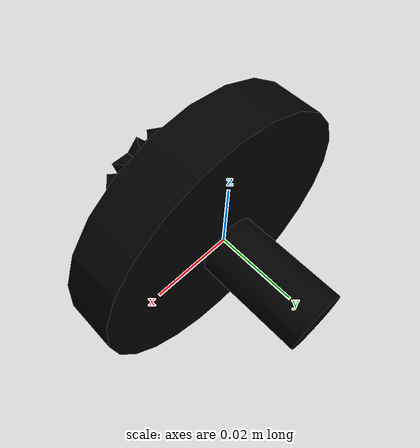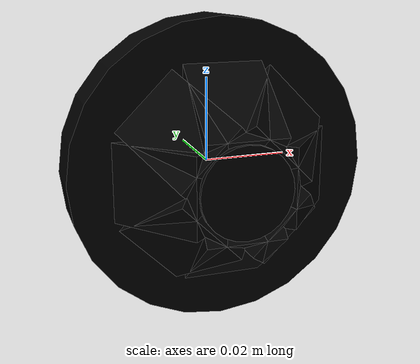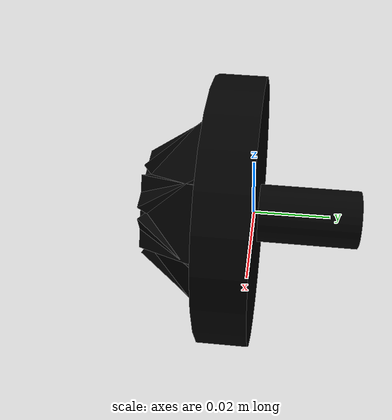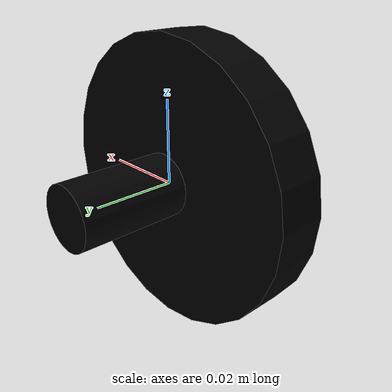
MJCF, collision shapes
<?xml version="1.0" ?>
<mujoco model="model">
    <compiler angle="radian"/>
    <asset>
        <mesh file="visuals/CabinetHandle036.obj" name="mesh"/>
        <texture file="visuals/T_BC001.png" name="tex" type="2d"/>
        <material name="mat" rgba="1 1 1 1.0" texture="tex" shininess="0.05" specular="1"/>
    </asset>
    <default>
        <default class="visual">
            <geom conaffinity="0" contype="0" group="1" type="mesh"/>
        </default>
        <default class="collision">
            <geom group="0" rgba="0 0 0 0"/>
        </default>
        <default class="spawn">
            <geom group="0" rgba="0 0 0 0" contype="0" conaffinity="0"/>
            <site group="0" rgba="0 0 0 0"/>
        </default>
    </default>
    <worldbody>
        <body>
            <body name="object">
                <geom mesh="mesh" type="mesh" solimp="0.998 0.998 0.001" solref="0.001 1" density="100" friction="0.95 0.3 0.1" class="visual" material="mat"/>
                <geom class="collision" type="cylinder" pos="0.0 -0.0048188683576881886 3.638144507878138e-10" size="0.03510913625359535 0.006224796641618013" quat="0.7071068286895752 0.7071067690849304 0.0 0.0"/>
                <geom class="collision" type="cylinder" pos="0.00018008383631240577 0.01457275915890932 -1.1002124766790189e-09" size="0.007632123306393623 0.0131168682128191" quat="0.7071068286895752 0.7071067690849304 0.0 0.0" name="handle_connector"/>
                <geom class="collision" type="box" pos="0.00016015159781090915 -0.01602323353290558 0.01651105470955372" size="0.009154416620731354 0.01229102537035942 0.003340677823871374" quat="0.9396926164627075 0.3420201539993286 0.0 0.0"/>
                <geom class="collision" type="cylinder" pos="0.0 -0.024420004338026047 1.8436593363091447e-09" size="0.010477656498551369 0.003289910964667797" quat="0.7071068286895752 0.7071067690849304 0.0 0.0"/>
                <geom class="collision" type="box" pos="0.00016015159781090915 -0.01602323353290558 -0.016511056572198868" size="0.009154416620731354 0.01229102537035942 0.003340677823871374" quat="0.9396926164627075 -0.3420201539993286 -0.0 0.0"/>
                <geom class="collision" type="box" pos="-0.016511056572198868 -0.01602323353290558 -0.00016015283472370356" size="0.009154416620731354 0.012291024439036846 0.003340677823871374" quat="0.6644630432128906 -0.24184481799602509 0.6644629836082458 0.2418448030948639"/>
                <geom class="collision" type="box" pos="0.01651105470955372 -0.01602323353290558 -0.00016015036089811474" size="0.009154416620731354 0.012291024439036846 0.003340677823871374" quat="0.6644630432128906 0.24184481799602509 0.6644629836082458 -0.2418448030948639"/>
                <geom class="collision" type="box" pos="0.011788319796323776 -0.016023235395550728 0.011561836116015911" size="0.009154416620731354 0.012291024439036846 0.003340677823871374" quat="0.8681626915931702 0.3159855306148529 0.3596048057079315 -0.13088557124137878"/>
                <geom class="collision" type="box" pos="-0.011561838909983635 -0.01602322980761528 -0.011788328178226948" size="0.009154416620731354 0.012291023507714272 0.003340677823871374" quat="0.8681628108024597 -0.3159853219985962 0.35960477590560913 0.13088534772396088"/>
                <geom class="collision" type="box" pos="-0.011788330040872097 -0.01602322980761528 0.011561836116015911" size="0.009154416620731354 0.012291023507714272 0.003340677823871374" quat="0.3596048951148987 -0.13088546693325043 0.8681628108024597 0.3159852623939514"/>
                <geom class="collision" type="box" pos="0.01156183797866106 -0.016023237258195877 -0.011788317933678627" size="0.009154416620731354 0.012291024439036846 0.003340677823871374" quat="0.3596048951148987 0.13088549673557281 0.8681626915931702 -0.3159855008125305"/>
            </body>
        </body>
    </worldbody>
    <actuator/>
</mujoco>
